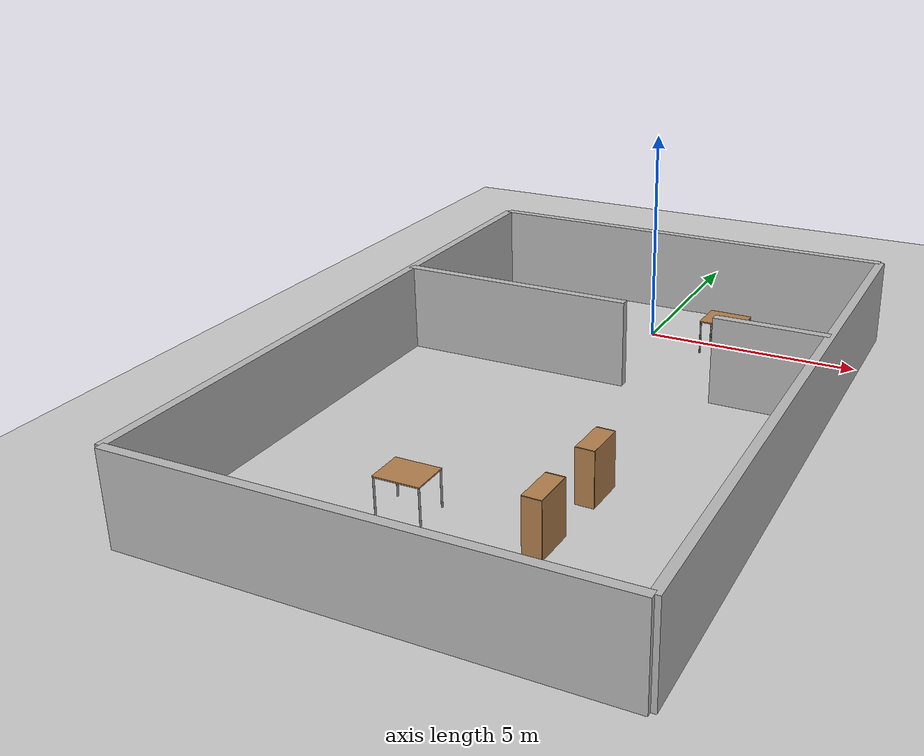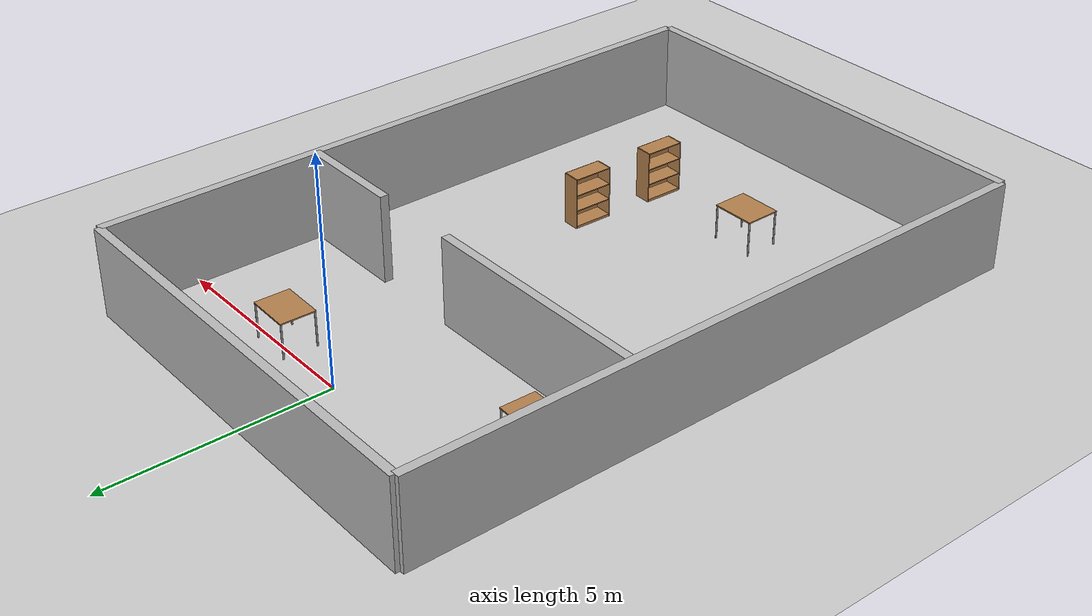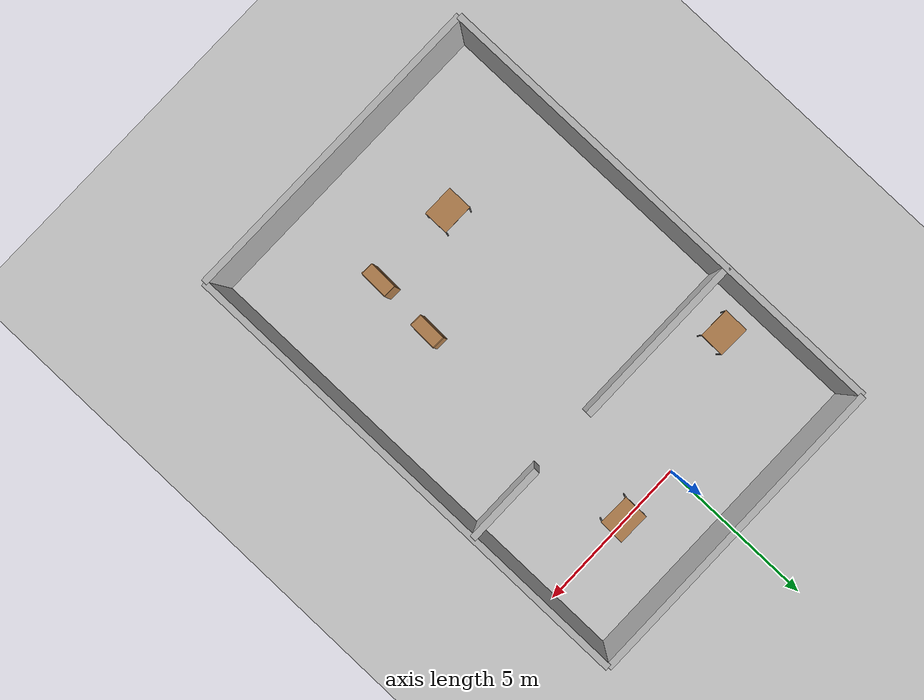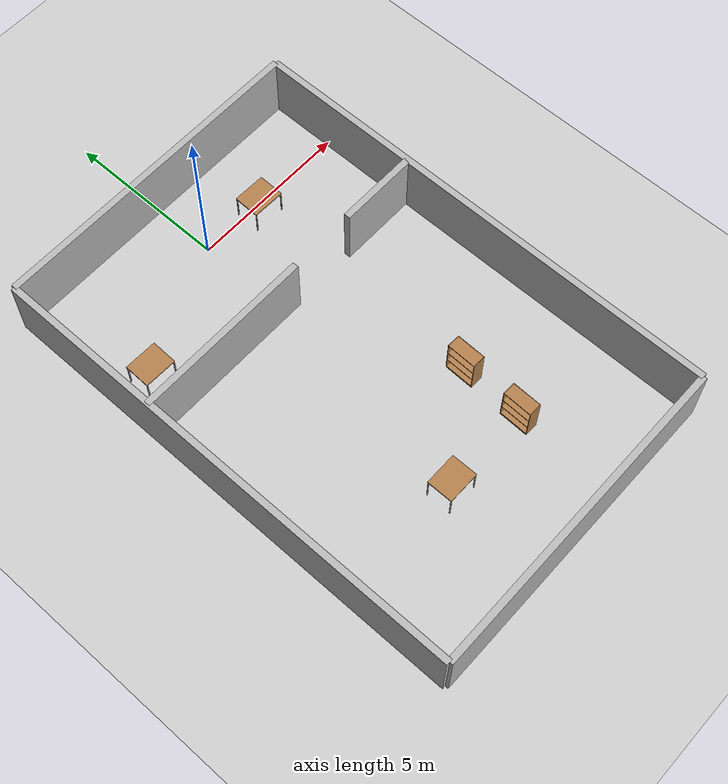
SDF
<sdf version="1.6">
 <world name="default">
  <physics name="default_physics" default="0" type="ode">
   <ode>
    <solver>
     <type>quick</type>
     <iters>20</iters>
     <sor>1</sor>
     <use_dynamic_moi_rescaling>0</use_dynamic_moi_rescaling>
    </solver>
    <constraints>
     <cfm>0</cfm>
     <erp>0.2</erp>
     <contact_max_correcting_vel>100</contact_max_correcting_vel>
     <contact_surface_layer>0</contact_surface_layer>
    </constraints>
   </ode>
   <real_time_update_rate>1000</real_time_update_rate>
   <max_step_size>0.001</max_step_size>
   <real_time_factor>1</real_time_factor>
   <max_contacts>20</max_contacts>
  </physics>
  <light name="sun" type="directional">
   <pose>0 0 10 0 -0 0</pose>
   <diffuse>0.8 0.8 0.8 1</diffuse>
   <specular>0.2 0.2 0.2 1</specular>
   <attenuation>
    <range>1000</range>
    <constant>0.9</constant>
    <linear>0.01</linear>
    <quadratic>0.001</quadratic>
   </attenuation>
   <direction>0.5 0.1 -0.9</direction>
  </light>
  <model name="ground_plane">
   <static>1</static>
   <link name="link">
    <collision name="collision">
     <geometry><plane><normal>0 0 1</normal><size>100 100</size></plane></geometry>
     <surface><friction><ode><mu>100</mu><mu2>50</mu2></ode></friction></surface>
    </collision>
    <visual name="visual">
     <cast_shadows>0</cast_shadows>
     <geometry><plane><normal>0 0 1</normal><size>100 100</size></plane></geometry>
     <material>
      <script><uri>file://media/materials/scripts/gazebo.material</uri><name>Gazebo/Grey</name></script>
     </material>
    </visual>
    <velocity_decay><linear>0</linear><angular>0</angular></velocity_decay>
   </link>
  </model>
  <model name="wall_1_model">
   <pose>0 -13 1 0 -0 0</pose>
   <static>1</static>
   <link name="wall_1_body">
    <inertial>
     <mass>1</mass>
     <inertia><ixx>1</ixx><ixy>0</ixy><ixz>0</ixz><iyy>1</iyy><iyz>0</iyz><izz>1</izz></inertia>
    </inertial>
    <collision name="collision"><geometry><box><size>10 0.2 2</size></box></geometry></collision>
    <visual name="visual"><geometry><box><size>10 0.2 2</size></box></geometry></visual>
    <velocity_decay><linear>0</linear><angular>0</angular></velocity_decay>
   </link>
  </model>
  <model name="wall_2_model">
   <pose>0 2 1 0 -0 0</pose>
   <static>1</static>
   <link name="wall_2_body">
    <inertial>
     <mass>1</mass>
     <inertia><ixx>1</ixx><ixy>0</ixy><ixz>0</ixz><iyy>1</iyy><iyz>0</iyz><izz>1</izz></inertia>
    </inertial>
    <collision name="collision"><geometry><box><size>10 0.2 2</size></box></geometry></collision>
    <visual name="visual"><geometry><box><size>10 0.2 2</size></box></geometry></visual>
    <velocity_decay><linear>0</linear><angular>0</angular></velocity_decay>
   </link>
  </model>
  <model name="wall_3_model">
   <pose>-5 -5.5 1 0 -0 0</pose>
   <static>1</static>
   <link name="wall_3_body">
    <inertial>
     <mass>1</mass>
     <inertia><ixx>1</ixx><ixy>0</ixy><ixz>0</ixz><iyy>1</iyy><iyz>0</iyz><izz>1</izz></inertia>
    </inertial>
    <collision name="collision"><geometry><box><size>0.2 15 2</size></box></geometry></collision>
    <visual name="visual"><geometry><box><size>0.2 15 2</size></box></geometry></visual>
    <velocity_decay><linear>0</linear><angular>0</angular></velocity_decay>
   </link>
  </model>
  <model name="wall_4_model">
   <pose>5 -5.5 1 0 -0 0</pose>
   <static>1</static>
   <link name="wall_4_body">
    <inertial>
     <mass>1</mass>
     <inertia><ixx>1</ixx><ixy>0</ixy><ixz>0</ixz><iyy>1</iyy><iyz>0</iyz><izz>1</izz></inertia>
    </inertial>
    <collision name="collision"><geometry><box><size>0.2 15 2</size></box></geometry></collision>
    <visual name="visual"><geometry><box><size>0.2 15 2</size></box></geometry></visual>
    <velocity_decay><linear>0</linear><angular>0</angular></velocity_decay>
   </link>
  </model>
  <model name="wall_5_model">
   <pose>-2.2878 -3.01622 1 0 -0 0</pose>
   <static>1</static>
   <link name="wall_5_body">
    <inertial>
     <mass>1</mass>
     <inertia><ixx>1</ixx><ixy>0</ixy><ixz>0</ixz><iyy>1</iyy><iyz>0</iyz><izz>1</izz></inertia>
    </inertial>
    <collision name="collision"><geometry><box><size>5.5 0.2 2</size></box></geometry></collision>
    <visual name="visual"><geometry><box><size>5.5 0.2 2</size></box></geometry></visual>
    <velocity_decay><linear>0</linear><angular>0</angular></velocity_decay>
   </link>
  </model>
  <model name="wall_6_model">
   <pose>3.75 -3 1 0 -0 0</pose>
   <static>1</static>
   <link name="wall_6_body">
    <inertial>
     <mass>1</mass>
     <inertia><ixx>1</ixx><ixy>0</ixy><ixz>0</ixz><iyy>1</iyy><iyz>0</iyz><izz>1</izz></inertia>
    </inertial>
    <collision name="collision"><geometry><box><size>2.5 0.2 2</size></box></geometry></collision>
    <visual name="visual"><geometry><box><size>2.5 0.2 2</size></box></geometry></visual>
    <velocity_decay><linear>0</linear><angular>0</angular></velocity_decay>
   </link>
  </model>
  <scene><ambient>0.2 0.2 0.2 1</ambient><background>0.7 0.7 0.7 1</background><shadows>1</shadows></scene>
  <model name="bookshelf">
   <static>0</static>
   <link name="link">
    <inertial>
     <mass>1</mass>
     <inertia><ixx>1</ixx><ixy>0</ixy><ixz>0</ixz><iyy>1</iyy><iyz>0</iyz><izz>1</izz></inertia>
    </inertial>
    <collision name="back">
     <pose>0 0.005 0.6 0 -0 0</pose>
     <geometry><box><size>0.9 0.01 1.2</size></box></geometry>
    </collision>
    <visual name="visual1">
     <pose>0 0.005 0.6 0 -0 0</pose>
     <geometry><box><size>0.9 0.01 1.2</size></box></geometry>
     <material>
      <script><uri>file://media/materials/scripts/gazebo.material</uri><name>Gazebo/Wood</name></script>
     </material>
    </visual>
    <collision name="left_side">
     <pose>0.45 -0.195 0.6 0 -0 0</pose>
     <geometry><box><size>0.02 0.4 1.2</size></box></geometry>
    </collision>
    <visual name="visual2">
     <pose>0.45 -0.195 0.6 0 -0 0</pose>
     <geometry><box><size>0.02 0.4 1.2</size></box></geometry>
     <material>
      <script><uri>file://media/materials/scripts/gazebo.material</uri><name>Gazebo/Wood</name></script>
     </material>
    </visual>
    <collision name="right_side">
     <pose>-0.45 -0.195 0.6 0 -0 0</pose>
     <geometry><box><size>0.02 0.4 1.2</size></box></geometry>
    </collision>
    <visual name="visual3">
     <pose>-0.45 -0.195 0.6 0 -0 0</pose>
     <geometry><box><size>0.02 0.4 1.2</size></box></geometry>
     <material>
      <script><uri>file://media/materials/scripts/gazebo.material</uri><name>Gazebo/Wood</name></script>
     </material>
    </visual>
    <collision name="bottom">
     <pose>0 -0.195 0.03 0 -0 0</pose>
     <geometry><box><size>0.88 0.4 0.06</size></box></geometry>
    </collision>
    <visual name="visual4">
     <pose>0 -0.195 0.03 0 -0 0</pose>
     <geometry><box><size>0.88 0.4 0.06</size></box></geometry>
     <material>
      <script><uri>file://media/materials/scripts/gazebo.material</uri><name>Gazebo/Wood</name></script>
     </material>
    </visual>
    <collision name="top">
     <pose>0 -0.195 1.19 0 -0 0</pose>
     <geometry><box><size>0.88 0.4 0.02</size></box></geometry>
    </collision>
    <visual name="visual5">
     <pose>0 -0.195 1.19 0 -0 0</pose>
     <geometry><box><size>0.88 0.4 0.02</size></box></geometry>
     <material>
      <script><uri>file://media/materials/scripts/gazebo.material</uri><name>Gazebo/Wood</name></script>
     </material>
    </visual>
    <collision name="low_shelf">
     <pose>0 -0.195 0.43 0 -0 0</pose>
     <geometry><box><size>0.88 0.4 0.02</size></box></geometry>
    </collision>
    <visual name="visual6">
     <pose>0 -0.195 0.43 0 -0 0</pose>
     <geometry><box><size>0.88 0.4 0.02</size></box></geometry>
     <material>
      <script><uri>file://media/materials/scripts/gazebo.material</uri><name>Gazebo/Wood</name></script>
     </material>
    </visual>
    <collision name="high_shelf">
     <pose>0 -0.195 0.8 0 -0 0</pose>
     <geometry><box><size>0.88 0.4 0.02</size></box></geometry>
    </collision>
    <visual name="visual7">
     <pose>0 -0.195 0.8 0 -0 0</pose>
     <geometry><box><size>0.88 0.4 0.02</size></box></geometry>
     <material>
      <script><uri>file://media/materials/scripts/gazebo.material</uri><name>Gazebo/Wood</name></script>
     </material>
    </visual>
    <velocity_decay><linear>0</linear><angular>0</angular></velocity_decay>
   </link>
   <pose>2.05199 -7.81012 0 -4.6e-05 -0 -1.6006</pose>
  </model>
  <gravity>0 0 -9.81</gravity>
  <magnetic_field>6e-06 2.3e-05 -4.2e-05</magnetic_field>
  <atmosphere type="adiabatic"/>
  <spherical_coordinates>
   <surface_model>EARTH_WGS84</surface_model>
   <latitude_deg>0</latitude_deg>
   <longitude_deg>0</longitude_deg>
   <elevation>0</elevation>
   <heading_deg>0</heading_deg>
  </spherical_coordinates>
  <model name="table_1">
   <static>1</static>
   <link name="link">
    <collision name="surface">
     <pose>0 0 0.8 0 -0 0</pose>
     <geometry><box><size>1 0.8 0.03</size></box></geometry>
    </collision>
    <visual name="visual1">
     <pose>0 0 0.8 0 -0 0</pose>
     <geometry><box><size>1 0.8 0.03</size></box></geometry>
     <material>
      <script><uri>file://media/materials/scripts/gazebo.material</uri><name>Gazebo/Wood</name></script>
     </material>
    </visual>
    <collision name="front_left_leg">
     <pose>0.48 0.38 0.4 0 -0 0</pose>
     <geometry><cylinder><radius>0.02</radius><length>0.8</length></cylinder></geometry>
    </collision>
    <visual name="front_left_leg">
     <pose>0.48 0.38 0.4 0 -0 0</pose>
     <geometry><cylinder><radius>0.02</radius><length>0.8</length></cylinder></geometry>
     <material>
      <script><uri>file://media/materials/scripts/gazebo.material</uri><name>Gazebo/Grey</name></script>
     </material>
    </visual>
    <collision name="front_right_leg">
     <pose>0.48 -0.38 0.4 0 -0 0</pose>
     <geometry><cylinder><radius>0.02</radius><length>0.8</length></cylinder></geometry>
    </collision>
    <visual name="front_right_leg">
     <pose>0.48 -0.38 0.4 0 -0 0</pose>
     <geometry><cylinder><radius>0.02</radius><length>0.8</length></cylinder></geometry>
     <material>
      <script><uri>file://media/materials/scripts/gazebo.material</uri><name>Gazebo/Grey</name></script>
     </material>
    </visual>
    <collision name="back_right_leg">
     <pose>-0.48 -0.38 0.4 0 -0 0</pose>
     <geometry><cylinder><radius>0.02</radius><length>0.8</length></cylinder></geometry>
    </collision>
    <visual name="back_right_leg">
     <pose>-0.48 -0.38 0.4 0 -0 0</pose>
     <geometry><cylinder><radius>0.02</radius><length>0.8</length></cylinder></geometry>
     <material>
      <script><uri>file://media/materials/scripts/gazebo.material</uri><name>Gazebo/Grey</name></script>
     </material>
    </visual>
    <collision name="back_left_leg">
     <pose>-0.48 0.38 0.4 0 -0 0</pose>
     <geometry><cylinder><radius>0.02</radius><length>0.8</length></cylinder></geometry>
    </collision>
    <visual name="back_left_leg">
     <pose>-0.48 0.38 0.4 0 -0 0</pose>
     <geometry><cylinder><radius>0.02</radius><length>0.8</length></cylinder></geometry>
     <material>
      <script><uri>file://media/materials/scripts/gazebo.material</uri><name>Gazebo/Grey</name></script>
     </material>
    </visual>
    <velocity_decay><linear>0</linear><angular>0</angular></velocity_decay>
   </link>
   <pose>1.9089 -0.194378 0 0 0 -0.023939</pose>
  </model>
  <model name="table_2">
   <static>1</static>
   <link name="link">
    <collision name="surface">
     <pose>0 0 0.8 0 -0 0</pose>
     <geometry><box><size>1 0.8 0.03</size></box></geometry>
    </collision>
    <visual name="visual1">
     <pose>0 0 0.8 0 -0 0</pose>
     <geometry><box><size>1 0.8 0.03</size></box></geometry>
     <material>
      <script><uri>file://media/materials/scripts/gazebo.material</uri><name>Gazebo/Wood</name></script>
     </material>
    </visual>
    <collision name="front_left_leg">
     <pose>0.48 0.38 0.4 0 -0 0</pose>
     <geometry><cylinder><radius>0.02</radius><length>0.8</length></cylinder></geometry>
    </collision>
    <visual name="front_left_leg">
     <pose>0.48 0.38 0.4 0 -0 0</pose>
     <geometry><cylinder><radius>0.02</radius><length>0.8</length></cylinder></geometry>
     <material>
      <script><uri>file://media/materials/scripts/gazebo.material</uri><name>Gazebo/Grey</name></script>
     </material>
    </visual>
    <collision name="front_right_leg">
     <pose>0.48 -0.38 0.4 0 -0 0</pose>
     <geometry><cylinder><radius>0.02</radius><length>0.8</length></cylinder></geometry>
    </collision>
    <visual name="front_right_leg">
     <pose>0.48 -0.38 0.4 0 -0 0</pose>
     <geometry><cylinder><radius>0.02</radius><length>0.8</length></cylinder></geometry>
     <material>
      <script><uri>file://media/materials/scripts/gazebo.material</uri><name>Gazebo/Grey</name></script>
     </material>
    </visual>
    <collision name="back_right_leg">
     <pose>-0.48 -0.38 0.4 0 -0 0</pose>
     <geometry><cylinder><radius>0.02</radius><length>0.8</length></cylinder></geometry>
    </collision>
    <visual name="back_right_leg">
     <pose>-0.48 -0.38 0.4 0 -0 0</pose>
     <geometry><cylinder><radius>0.02</radius><length>0.8</length></cylinder></geometry>
     <material>
      <script><uri>file://media/materials/scripts/gazebo.material</uri><name>Gazebo/Grey</name></script>
     </material>
    </visual>
    <collision name="back_left_leg">
     <pose>-0.48 0.38 0.4 0 -0 0</pose>
     <geometry><cylinder><radius>0.02</radius><length>0.8</length></cylinder></geometry>
    </collision>
    <visual name="back_left_leg">
     <pose>-0.48 0.38 0.4 0 -0 0</pose>
     <geometry><cylinder><radius>0.02</radius><length>0.8</length></cylinder></geometry>
     <material>
      <script><uri>file://media/materials/scripts/gazebo.material</uri><name>Gazebo/Grey</name></script>
     </material>
    </visual>
    <velocity_decay><linear>0</linear><angular>0</angular></velocity_decay>
   </link>
   <pose>-1.00567 -9.77558 0 0 -0 0</pose>
  </model>
  <model name="table_1_clone">
   <static>1</static>
   <link name="link">
    <collision name="surface">
     <pose>0 0 0.8 0 -0 0</pose>
     <geometry><box><size>1 0.8 0.03</size></box></geometry>
    </collision>
    <visual name="visual1">
     <pose>0 0 0.8 0 -0 0</pose>
     <geometry><box><size>1 0.8 0.03</size></box></geometry>
     <material>
      <script><uri>file://media/materials/scripts/gazebo.material</uri><name>Gazebo/Wood</name></script>
     </material>
    </visual>
    <collision name="front_left_leg">
     <pose>0.48 0.38 0.4 0 -0 0</pose>
     <geometry><cylinder><radius>0.02</radius><length>0.8</length></cylinder></geometry>
    </collision>
    <visual name="front_left_leg">
     <pose>0.48 0.38 0.4 0 -0 0</pose>
     <geometry><cylinder><radius>0.02</radius><length>0.8</length></cylinder></geometry>
     <material>
      <script><uri>file://media/materials/scripts/gazebo.material</uri><name>Gazebo/Grey</name></script>
     </material>
    </visual>
    <collision name="front_right_leg">
     <pose>0.48 -0.38 0.4 0 -0 0</pose>
     <geometry><cylinder><radius>0.02</radius><length>0.8</length></cylinder></geometry>
    </collision>
    <visual name="front_right_leg">
     <pose>0.48 -0.38 0.4 0 -0 0</pose>
     <geometry><cylinder><radius>0.02</radius><length>0.8</length></cylinder></geometry>
     <material>
      <script><uri>file://media/materials/scripts/gazebo.material</uri><name>Gazebo/Grey</name></script>
     </material>
    </visual>
    <collision name="back_right_leg">
     <pose>-0.48 -0.38 0.4 0 -0 0</pose>
     <geometry><cylinder><radius>0.02</radius><length>0.8</length></cylinder></geometry>
    </collision>
    <visual name="back_right_leg">
     <pose>-0.48 -0.38 0.4 0 -0 0</pose>
     <geometry><cylinder><radius>0.02</radius><length>0.8</length></cylinder></geometry>
     <material>
      <script><uri>file://media/materials/scripts/gazebo.material</uri><name>Gazebo/Grey</name></script>
     </material>
    </visual>
    <collision name="back_left_leg">
     <pose>-0.48 0.38 0.4 0 -0 0</pose>
     <geometry><cylinder><radius>0.02</radius><length>0.8</length></cylinder></geometry>
    </collision>
    <visual name="back_left_leg">
     <pose>-0.48 0.38 0.4 0 -0 0</pose>
     <geometry><cylinder><radius>0.02</radius><length>0.8</length></cylinder></geometry>
     <material>
      <script><uri>file://media/materials/scripts/gazebo.material</uri><name>Gazebo/Grey</name></script>
     </material>
    </visual>
    <velocity_decay><linear>0</linear><angular>0</angular></velocity_decay>
   </link>
   <pose>-3.84898 -1.74276 0 0 0 -0.023939</pose>
  </model>
  <model name="bookshelf_clone">
   <static>0</static>
   <link name="link">
    <inertial>
     <mass>1</mass>
     <inertia><ixx>1</ixx><ixy>0</ixy><ixz>0</ixz><iyy>1</iyy><iyz>0</iyz><izz>1</izz></inertia>
    </inertial>
    <collision name="back">
     <pose>0 0.005 0.6 0 -0 0</pose>
     <geometry><box><size>0.9 0.01 1.2</size></box></geometry>
    </collision>
    <visual name="visual1">
     <pose>0 0.005 0.6 0 -0 0</pose>
     <geometry><box><size>0.9 0.01 1.2</size></box></geometry>
     <material>
      <script><uri>file://media/materials/scripts/gazebo.material</uri><name>Gazebo/Wood</name></script>
     </material>
    </visual>
    <collision name="left_side">
     <pose>0.45 -0.195 0.6 0 -0 0</pose>
     <geometry><box><size>0.02 0.4 1.2</size></box></geometry>
    </collision>
    <visual name="visual2">
     <pose>0.45 -0.195 0.6 0 -0 0</pose>
     <geometry><box><size>0.02 0.4 1.2</size></box></geometry>
     <material>
      <script><uri>file://media/materials/scripts/gazebo.material</uri><name>Gazebo/Wood</name></script>
     </material>
    </visual>
    <collision name="right_side">
     <pose>-0.45 -0.195 0.6 0 -0 0</pose>
     <geometry><box><size>0.02 0.4 1.2</size></box></geometry>
    </collision>
    <visual name="visual3">
     <pose>-0.45 -0.195 0.6 0 -0 0</pose>
     <geometry><box><size>0.02 0.4 1.2</size></box></geometry>
     <material>
      <script><uri>file://media/materials/scripts/gazebo.material</uri><name>Gazebo/Wood</name></script>
     </material>
    </visual>
    <collision name="bottom">
     <pose>0 -0.195 0.03 0 -0 0</pose>
     <geometry><box><size>0.88 0.4 0.06</size></box></geometry>
    </collision>
    <visual name="visual4">
     <pose>0 -0.195 0.03 0 -0 0</pose>
     <geometry><box><size>0.88 0.4 0.06</size></box></geometry>
     <material>
      <script><uri>file://media/materials/scripts/gazebo.material</uri><name>Gazebo/Wood</name></script>
     </material>
    </visual>
    <collision name="top">
     <pose>0 -0.195 1.19 0 -0 0</pose>
     <geometry><box><size>0.88 0.4 0.02</size></box></geometry>
    </collision>
    <visual name="visual5">
     <pose>0 -0.195 1.19 0 -0 0</pose>
     <geometry><box><size>0.88 0.4 0.02</size></box></geometry>
     <material>
      <script><uri>file://media/materials/scripts/gazebo.material</uri><name>Gazebo/Wood</name></script>
     </material>
    </visual>
    <collision name="low_shelf">
     <pose>0 -0.195 0.43 0 -0 0</pose>
     <geometry><box><size>0.88 0.4 0.02</size></box></geometry>
    </collision>
    <visual name="visual6">
     <pose>0 -0.195 0.43 0 -0 0</pose>
     <geometry><box><size>0.88 0.4 0.02</size></box></geometry>
     <material>
      <script><uri>file://media/materials/scripts/gazebo.material</uri><name>Gazebo/Wood</name></script>
     </material>
    </visual>
    <collision name="high_shelf">
     <pose>0 -0.195 0.8 0 -0 0</pose>
     <geometry><box><size>0.88 0.4 0.02</size></box></geometry>
    </collision>
    <visual name="visual7">
     <pose>0 -0.195 0.8 0 -0 0</pose>
     <geometry><box><size>0.88 0.4 0.02</size></box></geometry>
     <material>
      <script><uri>file://media/materials/scripts/gazebo.material</uri><name>Gazebo/Wood</name></script>
     </material>
    </visual>
    <velocity_decay><linear>0</linear><angular>0</angular></velocity_decay>
   </link>
   <pose>1.9477 -9.78271 1e-06 -1.2e-05 2e-06 -1.6006</pose>
  </model>
 </world>
</sdf>
